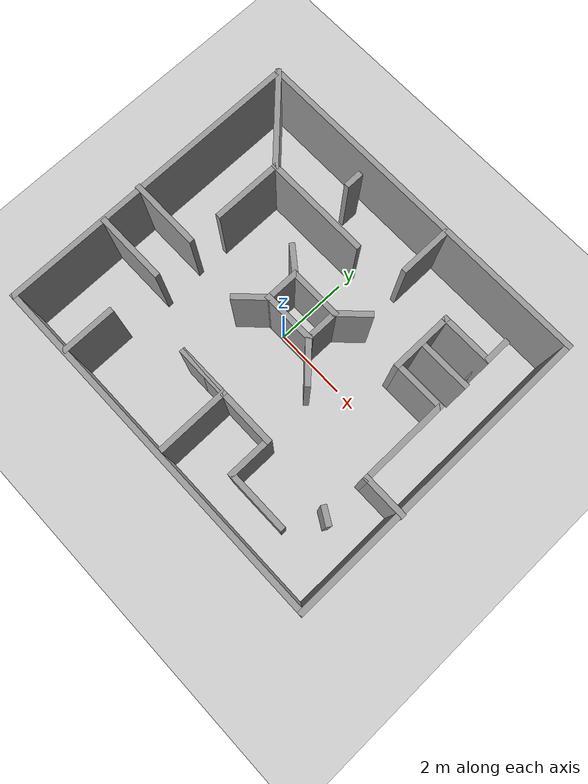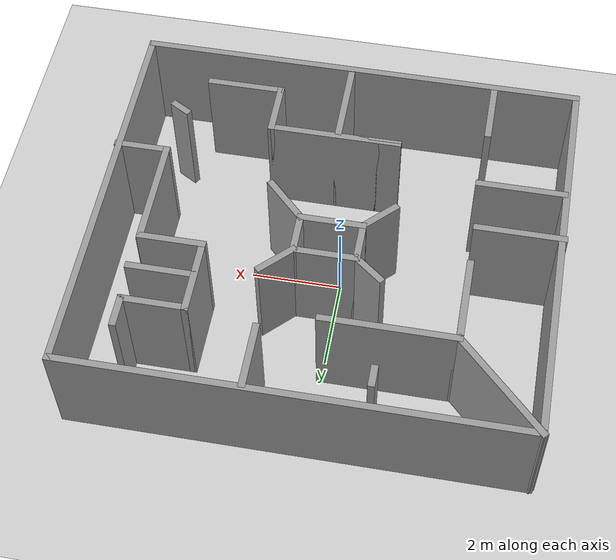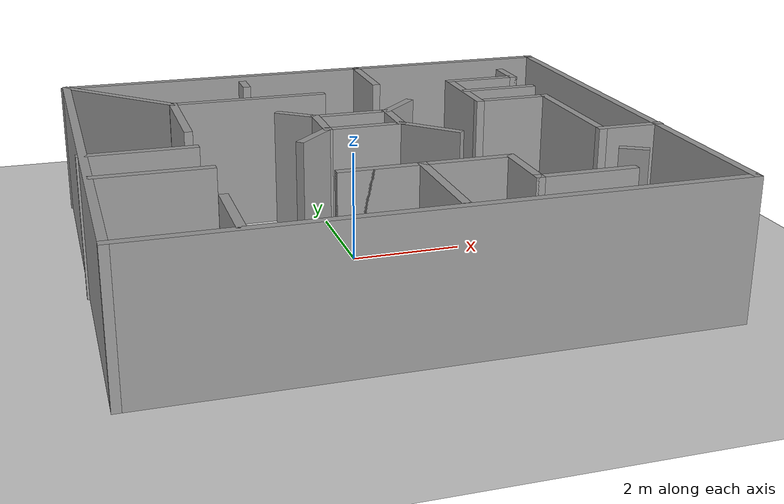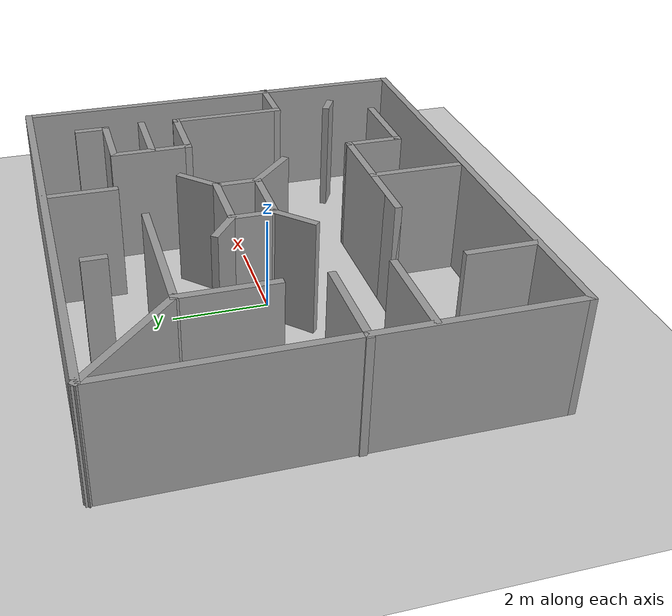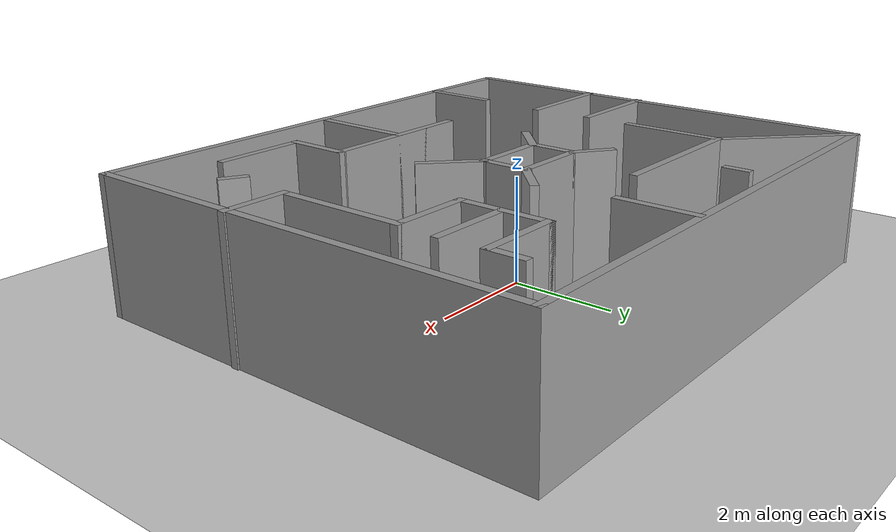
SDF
<sdf version="1.7">
 <world name="default">
  <light name="sun" type="directional">
   <pose>0 0 10 0 -0 0</pose>
   <diffuse>0.8 0.8 0.8 1</diffuse>
   <specular>0.2 0.2 0.2 1</specular>
   <attenuation>
    <range>1000</range>
    <constant>0.9</constant>
    <linear>0.01</linear>
    <quadratic>0.001</quadratic>
   </attenuation>
   <direction>-0.5 0.1 -0.9</direction>
   <spot><inner_angle>0</inner_angle><outer_angle>0</outer_angle><falloff>0</falloff></spot>
  </light>
  <model name="ground_plane">
   <static>1</static>
   <link name="link">
    <collision name="collision">
     <geometry><plane><normal>0 0 1</normal><size>100 100</size></plane></geometry>
     <surface><friction><ode><mu>100</mu><mu2>50</mu2></ode></friction></surface>
    </collision>
    <visual name="visual">
     <cast_shadows>0</cast_shadows>
     <geometry><plane><normal>0 0 1</normal><size>100 100</size></plane></geometry>
     <material>
      <script><uri>file://media/materials/scripts/gazebo.material</uri><name>Gazebo/Grey</name></script>
     </material>
    </visual>
   </link>
  </model>
  <gravity>0 0 -9.8</gravity>
  <magnetic_field>6e-06 2.3e-05 -4.2e-05</magnetic_field>
  <atmosphere type="adiabatic"/>
  <physics type="ode">
   <max_step_size>0.001</max_step_size>
   <real_time_factor>1</real_time_factor>
   <real_time_update_rate>1000</real_time_update_rate>
  </physics>
  <scene><ambient>0.4 0.4 0.4 1</ambient><background>0.7 0.7 0.7 1</background><shadows>1</shadows></scene>
  <audio><device>default</device></audio>
  <spherical_coordinates>
   <surface_model>EARTH_WGS84</surface_model>
   <latitude_deg>0</latitude_deg>
   <longitude_deg>0</longitude_deg>
   <elevation>0</elevation>
   <heading_deg>0</heading_deg>
  </spherical_coordinates>
  <model name="maze3">
   <pose>0.254791 -0.049137 0 0 -0 0</pose>
   <link name="Wall_10">
    <collision name="Wall_10_Collision">
     <geometry><box><size>2.75 0.15 2.5</size></box></geometry>
     <pose>0 0 1.25 0 -0 0</pose>
    </collision>
    <visual name="Wall_10_Visual">
     <pose>0 0 1.25 0 -0 0</pose>
     <geometry><box><size>2.75 0.15 2.5</size></box></geometry>
     <material>
      <script><uri>file://media/materials/scripts/gazebo.material</uri><name>Gazebo/Grey</name></script>
      <ambient>1 1 1 1</ambient>
     </material>
     <meta><layer>0</layer></meta>
    </visual>
    <pose>-4.0011 3.36523 0 0 -0 -0.785398</pose>
   </link>
   <link name="Wall_11">
    <collision name="Wall_11_Collision">
     <geometry><box><size>3 0.15 2.5</size></box></geometry>
     <pose>0 0 1.25 0 -0 0</pose>
    </collision>
    <visual name="Wall_11_Visual">
     <pose>0 0 1.25 0 -0 0</pose>
     <geometry><box><size>3 0.15 2.5</size></box></geometry>
     <material>
      <script><uri>file://media/materials/scripts/gazebo.material</uri><name>Gazebo/Grey</name></script>
      <ambient>1 1 1 1</ambient>
     </material>
     <meta><layer>0</layer></meta>
    </visual>
    <pose>-1.65686 2.44599 0 0 -0 0</pose>
   </link>
   <link name="Wall_13">
    <collision name="Wall_13_Collision">
     <geometry><box><size>2 0.15 2.5</size></box></geometry>
     <pose>0 0 1.25 0 -0 0</pose>
    </collision>
    <visual name="Wall_13_Visual">
     <pose>0 0 1.25 0 -0 0</pose>
     <geometry><box><size>2 0.15 2.5</size></box></geometry>
     <material>
      <script><uri>file://media/materials/scripts/gazebo.material</uri><name>Gazebo/Grey</name></script>
      <ambient>1 1 1 1</ambient>
     </material>
     <meta><layer>0</layer></meta>
    </visual>
    <pose>-3.08186 1.52099 0 0 -0 -1.5708</pose>
   </link>
   <link name="Wall_15">
    <collision name="Wall_15_Collision">
     <geometry><box><size>2 0.15 2.5</size></box></geometry>
     <pose>0 0 1.25 0 -0 0</pose>
    </collision>
    <visual name="Wall_15_Visual">
     <pose>0 0 1.25 0 -0 0</pose>
     <geometry><box><size>2 0.15 2.5</size></box></geometry>
     <material>
      <script><uri>file://media/materials/scripts/gazebo.material</uri><name>Gazebo/Grey</name></script>
      <ambient>1 1 1 1</ambient>
     </material>
     <meta><layer>0</layer></meta>
    </visual>
    <pose>-4.03343 -0.352333 0 0 -0 0</pose>
   </link>
   <link name="Wall_18">
    <collision name="Wall_18_Collision">
     <geometry><box><size>1.5 0.15 2.5</size></box></geometry>
     <pose>0 0 1.25 0 -0 0</pose>
    </collision>
    <visual name="Wall_18_Visual">
     <pose>0 0 1.25 0 -0 0</pose>
     <geometry><box><size>1.5 0.15 2.5</size></box></geometry>
     <material>
      <script><uri>file://media/materials/scripts/gazebo.material</uri><name>Gazebo/Grey</name></script>
      <ambient>1 1 1 1</ambient>
     </material>
     <meta><layer>0</layer></meta>
    </visual>
    <pose>-3.06951 -3.59837 0 0 -0 -1.5708</pose>
   </link>
   <link name="Wall_20">
    <collision name="Wall_20_Collision">
     <geometry><box><size>2 0.15 2.5</size></box></geometry>
     <pose>0 0 1.25 0 -0 0</pose>
    </collision>
    <visual name="Wall_20_Visual">
     <pose>0 0 1.25 0 -0 0</pose>
     <geometry><box><size>2 0.15 2.5</size></box></geometry>
     <material>
      <script><uri>file://media/materials/scripts/gazebo.material</uri><name>Gazebo/Grey</name></script>
      <ambient>1 1 1 1</ambient>
     </material>
     <meta><layer>0</layer></meta>
    </visual>
    <pose>0.209881 -3.23142 0 0 -0 1.5708</pose>
   </link>
   <link name="Wall_21">
    <collision name="Wall_21_Collision">
     <geometry><box><size>1.5 0.15 2.5</size></box></geometry>
     <pose>0 0 1.25 0 -0 0</pose>
    </collision>
    <visual name="Wall_21_Visual">
     <pose>0 0 1.25 0 -0 0</pose>
     <geometry><box><size>1.5 0.15 2.5</size></box></geometry>
     <material>
      <script><uri>file://media/materials/scripts/gazebo.material</uri><name>Gazebo/Grey</name></script>
      <ambient>1 1 1 1</ambient>
     </material>
     <meta><layer>0</layer></meta>
    </visual>
    <pose>-0.465119 -2.30642 0 0 -0 3.14159</pose>
   </link>
   <link name="Wall_22">
    <collision name="Wall_22_Collision">
     <geometry><box><size>3 0.15 2.5</size></box></geometry>
     <pose>0 0 1.25 0 -0 0</pose>
    </collision>
    <visual name="Wall_22_Visual">
     <pose>0 0 1.25 0 -0 0</pose>
     <geometry><box><size>3 0.15 2.5</size></box></geometry>
     <material>
      <script><uri>file://media/materials/scripts/gazebo.material</uri><name>Gazebo/Grey</name></script>
      <ambient>1 1 1 1</ambient>
     </material>
     <meta><layer>0</layer></meta>
    </visual>
    <pose>0.284881 -2.30642 0 0 -0 0</pose>
   </link>
   <link name="Wall_23">
    <collision name="Wall_23_Collision">
     <geometry><box><size>1.25 0.15 2.5</size></box></geometry>
     <pose>0 0 1.25 0 -0 0</pose>
    </collision>
    <visual name="Wall_23_Visual">
     <pose>0 0 1.25 0 -0 0</pose>
     <geometry><box><size>1.25 0.15 2.5</size></box></geometry>
     <material>
      <script><uri>file://media/materials/scripts/gazebo.material</uri><name>Gazebo/Grey</name></script>
      <ambient>1 1 1 1</ambient>
     </material>
     <meta><layer>0</layer></meta>
    </visual>
    <pose>1.70988 -2.85642 0 0 -0 -1.5708</pose>
   </link>
   <link name="Wall_24">
    <collision name="Wall_24_Collision">
     <geometry><box><size>1.75 0.15 2.5</size></box></geometry>
     <pose>0 0 1.25 0 -0 0</pose>
    </collision>
    <visual name="Wall_24_Visual">
     <pose>0 0 1.25 0 -0 0</pose>
     <geometry><box><size>1.75 0.15 2.5</size></box></geometry>
     <material>
      <script><uri>file://media/materials/scripts/gazebo.material</uri><name>Gazebo/Grey</name></script>
      <ambient>1 1 1 1</ambient>
     </material>
     <meta><layer>0</layer></meta>
    </visual>
    <pose>2.50988 -3.40642 0 0 -0 0</pose>
   </link>
   <link name="Wall_26">
    <collision name="Wall_26_Collision">
     <geometry><box><size>1.25 0.15 2.5</size></box></geometry>
     <pose>0 0 1.25 0 -0 0</pose>
    </collision>
    <visual name="Wall_26_Visual">
     <pose>0 0 1.25 0 -0 0</pose>
     <geometry><box><size>1.25 0.15 2.5</size></box></geometry>
     <material>
      <script><uri>file://media/materials/scripts/gazebo.material</uri><name>Gazebo/Grey</name></script>
      <ambient>1 1 1 1</ambient>
     </material>
     <meta><layer>0</layer></meta>
    </visual>
    <pose>4.40843 -1.27056 0 0 -0 3.14159</pose>
   </link>
   <link name="Wall_27">
    <collision name="Wall_27_Collision">
     <geometry><box><size>2.5 0.15 2.5</size></box></geometry>
     <pose>0 0 1.25 0 -0 0</pose>
    </collision>
    <visual name="Wall_27_Visual">
     <pose>0 0 1.25 0 -0 0</pose>
     <geometry><box><size>2.5 0.15 2.5</size></box></geometry>
     <material>
      <script><uri>file://media/materials/scripts/gazebo.material</uri><name>Gazebo/Grey</name></script>
      <ambient>1 1 1 1</ambient>
     </material>
     <meta><layer>0</layer></meta>
    </visual>
    <pose>3.85843 -0.095562 0 0 -0 1.5708</pose>
   </link>
   <link name="Wall_28">
    <collision name="Wall_28_Collision">
     <geometry><box><size>1.5 0.15 2.5</size></box></geometry>
     <pose>0 0 1.25 0 -0 0</pose>
    </collision>
    <visual name="Wall_28_Visual">
     <pose>0 0 1.25 0 -0 0</pose>
     <geometry><box><size>1.5 0.15 2.5</size></box></geometry>
     <material>
      <script><uri>file://media/materials/scripts/gazebo.material</uri><name>Gazebo/Grey</name></script>
      <ambient>1 1 1 1</ambient>
     </material>
     <meta><layer>0</layer></meta>
    </visual>
    <pose>3.18343 1.07944 0 0 -0 3.14159</pose>
   </link>
   <link name="Wall_29">
    <collision name="Wall_29_Collision">
     <geometry><box><size>1.75 0.15 2.5</size></box></geometry>
     <pose>0 0 1.25 0 -0 0</pose>
    </collision>
    <visual name="Wall_29_Visual">
     <pose>0 0 1.25 0 -0 0</pose>
     <geometry><box><size>1.75 0.15 2.5</size></box></geometry>
     <material>
      <script><uri>file://media/materials/scripts/gazebo.material</uri><name>Gazebo/Grey</name></script>
      <ambient>1 1 1 1</ambient>
     </material>
     <meta><layer>0</layer></meta>
    </visual>
    <pose>2.50843 1.87944 0 0 -0 1.5708</pose>
   </link>
   <link name="Wall_30">
    <collision name="Wall_30_Collision">
     <geometry><box><size>1.5 0.15 2.5</size></box></geometry>
     <pose>0 0 1.25 0 -0 0</pose>
    </collision>
    <visual name="Wall_30_Visual">
     <pose>0 0 1.25 0 -0 0</pose>
     <geometry><box><size>1.5 0.15 2.5</size></box></geometry>
     <material>
      <script><uri>file://media/materials/scripts/gazebo.material</uri><name>Gazebo/Grey</name></script>
      <ambient>1 1 1 1</ambient>
     </material>
     <meta><layer>0</layer></meta>
    </visual>
    <pose>3.18343 2.67944 0 0 -0 0</pose>
   </link>
   <link name="Wall_31">
    <collision name="Wall_31_Collision">
     <geometry><box><size>0.75 0.15 2.5</size></box></geometry>
     <pose>0 0 1.25 0 -0 0</pose>
    </collision>
    <visual name="Wall_31_Visual">
     <pose>0 0 1.25 0 -0 0</pose>
     <geometry><box><size>0.75 0.15 2.5</size></box></geometry>
     <material>
      <script><uri>file://media/materials/scripts/gazebo.material</uri><name>Gazebo/Grey</name></script>
      <ambient>1 1 1 1</ambient>
     </material>
     <meta><layer>0</layer></meta>
    </visual>
    <pose>3.85843 2.97944 0 0 -0 1.5708</pose>
   </link>
   <link name="Wall_33">
    <collision name="Wall_33_Collision">
     <geometry><box><size>1.5 0.15 2.5</size></box></geometry>
     <pose>0 0 1.25 0 -0 0</pose>
    </collision>
    <visual name="Wall_33_Visual">
     <pose>0 0 1.25 0 -0 0</pose>
     <geometry><box><size>1.5 0.15 2.5</size></box></geometry>
     <material>
      <script><uri>file://media/materials/scripts/gazebo.material</uri><name>Gazebo/Grey</name></script>
      <ambient>1 1 1 1</ambient>
     </material>
     <meta><layer>0</layer></meta>
    </visual>
    <pose>-0.059583 0.880716 0 0 -0 0</pose>
   </link>
   <link name="Wall_34">
    <collision name="Wall_34_Collision">
     <geometry><box><size>1 0.15 2.5</size></box></geometry>
     <pose>0 0 1.25 0 -0 0</pose>
    </collision>
    <visual name="Wall_34_Visual">
     <pose>0 0 1.25 0 -0 0</pose>
     <geometry><box><size>1 0.15 2.5</size></box></geometry>
     <material>
      <script><uri>file://media/materials/scripts/gazebo.material</uri><name>Gazebo/Grey</name></script>
      <ambient>1 1 1 1</ambient>
     </material>
     <meta><layer>0</layer></meta>
    </visual>
    <pose>0.615417 0.455716 0 0 -0 -1.5708</pose>
   </link>
   <link name="Wall_35">
    <collision name="Wall_35_Collision">
     <geometry><box><size>1.5 0.15 2.5</size></box></geometry>
     <pose>0 0 1.25 0 -0 0</pose>
    </collision>
    <visual name="Wall_35_Visual">
     <pose>0 0 1.25 0 -0 0</pose>
     <geometry><box><size>1.5 0.15 2.5</size></box></geometry>
     <material>
      <script><uri>file://media/materials/scripts/gazebo.material</uri><name>Gazebo/Grey</name></script>
      <ambient>1 1 1 1</ambient>
     </material>
     <meta><layer>0</layer></meta>
    </visual>
    <pose>-0.059583 0.030716 0 0 -0 3.14159</pose>
   </link>
   <link name="Wall_36">
    <collision name="Wall_36_Collision">
     <geometry><box><size>1 0.15 2.5</size></box></geometry>
     <pose>0 0 1.25 0 -0 0</pose>
    </collision>
    <visual name="Wall_36_Visual">
     <pose>0 0 1.25 0 -0 0</pose>
     <geometry><box><size>1 0.15 2.5</size></box></geometry>
     <material>
      <script><uri>file://media/materials/scripts/gazebo.material</uri><name>Gazebo/Grey</name></script>
      <ambient>1 1 1 1</ambient>
     </material>
     <meta><layer>0</layer></meta>
    </visual>
    <pose>-0.734583 0.455716 0 0 -0 1.5708</pose>
   </link>
   <link name="Wall_38">
    <collision name="Wall_38_Collision">
     <geometry><box><size>0.860219 0.15 2.5</size></box></geometry>
     <pose>0 0 1.25 0 -0 0</pose>
    </collision>
    <visual name="Wall_38_Visual">
     <pose>0 0 1.25 0 -0 0</pose>
     <geometry><box><size>0.860219 0.15 2.5</size></box></geometry>
     <material>
      <script><uri>file://media/materials/scripts/gazebo.material</uri><name>Gazebo/Grey</name></script>
      <ambient>1 1 1 1</ambient>
     </material>
     <meta><layer>0</layer></meta>
    </visual>
    <pose>-1.01484 1.0988 0 0 -0 -0.661282</pose>
   </link>
   <link name="Wall_40">
    <collision name="Wall_40_Collision">
     <geometry><box><size>1 0.15 2.5</size></box></geometry>
     <pose>0 0 1.25 0 -0 0</pose>
    </collision>
    <visual name="Wall_40_Visual">
     <pose>0 0 1.25 0 -0 0</pose>
     <geometry><box><size>1 0.15 2.5</size></box></geometry>
     <material>
      <script><uri>file://media/materials/scripts/gazebo.material</uri><name>Gazebo/Grey</name></script>
      <ambient>1 1 1 1</ambient>
     </material>
     <meta><layer>0</layer></meta>
    </visual>
    <pose>-1.0351 -0.269804 0 0 -0 -2.35619</pose>
   </link>
   <link name="Wall_42">
    <collision name="Wall_42_Collision">
     <geometry><box><size>1.25 0.15 2.5</size></box></geometry>
     <pose>0 0 1.25 0 -0 0</pose>
    </collision>
    <visual name="Wall_42_Visual">
     <pose>0 0 1.25 0 -0 0</pose>
     <geometry><box><size>1.25 0.15 2.5</size></box></geometry>
     <material>
      <script><uri>file://media/materials/scripts/gazebo.material</uri><name>Gazebo/Grey</name></script>
      <ambient>1 1 1 1</ambient>
     </material>
     <meta><layer>0</layer></meta>
    </visual>
    <pose>1.00433 -0.358193 0 0 -0 -0.785398</pose>
   </link>
   <link name="Wall_44">
    <collision name="Wall_44_Collision">
     <geometry><box><size>1 0.15 2.5</size></box></geometry>
     <pose>0 0 1.25 0 -0 0</pose>
    </collision>
    <visual name="Wall_44_Visual">
     <pose>0 0 1.25 0 -0 0</pose>
     <geometry><box><size>1 0.15 2.5</size></box></geometry>
     <material>
      <script><uri>file://media/materials/scripts/gazebo.material</uri><name>Gazebo/Grey</name></script>
      <ambient>1 1 1 1</ambient>
     </material>
     <meta><layer>0</layer></meta>
    </visual>
    <pose>0.915938 1.18124 0 0 -0 0.785398</pose>
   </link>
   <link name="Wall_46">
    <collision name="Wall_46_Collision">
     <geometry><box><size>1.5 0.15 2.5</size></box></geometry>
     <pose>0 0 1.25 0 -0 0</pose>
    </collision>
    <visual name="Wall_46_Visual">
     <pose>0 0 1.25 0 -0 0</pose>
     <geometry><box><size>1.5 0.15 2.5</size></box></geometry>
     <material>
      <script><uri>file://media/materials/scripts/gazebo.material</uri><name>Gazebo/Grey</name></script>
      <ambient>1 1 1 1</ambient>
     </material>
     <meta><layer>0</layer></meta>
    </visual>
    <pose>0.997661 3.55094 0 0 -0 -1.5708</pose>
   </link>
   <link name="Wall_48">
    <collision name="Wall_48_Collision">
     <geometry><box><size>2 0.15 2.5</size></box></geometry>
     <pose>0 0 1.25 0 -0 0</pose>
    </collision>
    <visual name="Wall_48_Visual">
     <pose>0 0 1.25 0 -0 0</pose>
     <geometry><box><size>2 0.15 2.5</size></box></geometry>
     <material>
      <script><uri>file://media/materials/scripts/gazebo.material</uri><name>Gazebo/Grey</name></script>
      <ambient>1 1 1 1</ambient>
     </material>
     <meta><layer>0</layer></meta>
    </visual>
    <pose>-3.94924 -1.52693 0 0 -0 0</pose>
   </link>
   <link name="Wall_50">
    <collision name="Wall_50_Collision">
     <geometry><box><size>0.5 0.15 2.5</size></box></geometry>
     <pose>0 0 1.25 0 -0 0</pose>
    </collision>
    <visual name="Wall_50_Visual">
     <pose>0 0 1.25 0 -0 0</pose>
     <geometry><box><size>0.5 0.15 2.5</size></box></geometry>
     <material>
      <script><uri>file://media/materials/scripts/gazebo.material</uri><name>Gazebo/Grey</name></script>
      <ambient>1 1 1 1</ambient>
     </material>
     <meta><layer>0</layer></meta>
    </visual>
    <pose>3.82259 -2.50707 0 0 -0 -0.523599</pose>
   </link>
   <link name="Wall_52">
    <collision name="Wall_52_Collision">
     <geometry><box><size>0.5 0.15 2.5</size></box></geometry>
     <pose>0 0 1.25 0 -0 0</pose>
    </collision>
    <visual name="Wall_52_Visual">
     <pose>0 0 1.25 0 -0 0</pose>
     <geometry><box><size>0.5 0.15 2.5</size></box></geometry>
     <material>
      <script><uri>file://media/materials/scripts/gazebo.material</uri><name>Gazebo/Grey</name></script>
      <ambient>1 1 1 1</ambient>
     </material>
     <meta><layer>0</layer></meta>
    </visual>
    <pose>-1.50627 3.5933 0 0 -0 -1.5708</pose>
   </link>
   <link name="Wall_54">
    <collision name="Wall_54_Collision">
     <geometry><box><size>1.5 0.15 2.5</size></box></geometry>
     <pose>0 0 1.25 0 -0 0</pose>
    </collision>
    <visual name="Wall_54_Visual">
     <pose>0 0 1.25 0 -0 0</pose>
     <geometry><box><size>1.5 0.15 2.5</size></box></geometry>
     <material>
      <script><uri>file://media/materials/scripts/gazebo.material</uri><name>Gazebo/Grey</name></script>
      <ambient>1 1 1 1</ambient>
     </material>
     <meta><layer>0</layer></meta>
    </visual>
    <pose>3.22922 1.86282 0 0 -0 0</pose>
   </link>
   <link name="Wall_6">
    <collision name="Wall_6_Collision">
     <geometry><box><size>10 0.15 2.5</size></box></geometry>
     <pose>0 0 1.25 0 -0 0</pose>
    </collision>
    <visual name="Wall_6_Visual">
     <pose>0 0 1.25 0 -0 0</pose>
     <geometry><box><size>10 0.15 2.5</size></box></geometry>
     <material>
      <script><uri>file://media/materials/scripts/gazebo.material</uri><name>Gazebo/Grey</name></script>
      <ambient>1 1 1 1</ambient>
     </material>
     <meta><layer>0</layer></meta>
    </visual>
    <pose>0.004664 4.28447 0 0 -0 0</pose>
   </link>
   <link name="Wall_7">
    <collision name="Wall_7_Collision">
     <geometry><box><size>8.75 0.15 2.5</size></box></geometry>
     <pose>0 0 1.25 0 -0 0</pose>
    </collision>
    <visual name="Wall_7_Visual">
     <pose>0 0 1.25 0 -0 0</pose>
     <geometry><box><size>8.75 0.15 2.5</size></box></geometry>
     <material>
      <script><uri>file://media/materials/scripts/gazebo.material</uri><name>Gazebo/Grey</name></script>
      <ambient>1 1 1 1</ambient>
     </material>
     <meta><layer>0</layer></meta>
    </visual>
    <pose>4.92966 -0.015533 0 0 -0 -1.5708</pose>
   </link>
   <link name="Wall_8">
    <collision name="Wall_8_Collision">
     <geometry><box><size>10 0.15 2.5</size></box></geometry>
     <pose>0 0 1.25 0 -0 0</pose>
    </collision>
    <visual name="Wall_8_Visual">
     <pose>0 0 1.25 0 -0 0</pose>
     <geometry><box><size>10 0.15 2.5</size></box></geometry>
     <material>
      <script><uri>file://media/materials/scripts/gazebo.material</uri><name>Gazebo/Grey</name></script>
      <ambient>1 1 1 1</ambient>
     </material>
     <meta><layer>0</layer></meta>
    </visual>
    <pose>0.004664 -4.31553 0 0 -0 3.14159</pose>
   </link>
   <link name="Wall_9">
    <collision name="Wall_9_Collision">
     <geometry><box><size>8.75 0.15 2.5</size></box></geometry>
     <pose>0 0 1.25 0 -0 0</pose>
    </collision>
    <visual name="Wall_9_Visual">
     <pose>0 0 1.25 0 -0 0</pose>
     <geometry><box><size>8.75 0.15 2.5</size></box></geometry>
     <material>
      <script><uri>file://media/materials/scripts/gazebo.material</uri><name>Gazebo/Grey</name></script>
      <ambient>1 1 1 1</ambient>
     </material>
     <meta><layer>0</layer></meta>
    </visual>
    <pose>-4.92034 -0.015533 0 0 -0 1.5708</pose>
   </link>
   <static>1</static>
  </model>
 </world>
</sdf>
